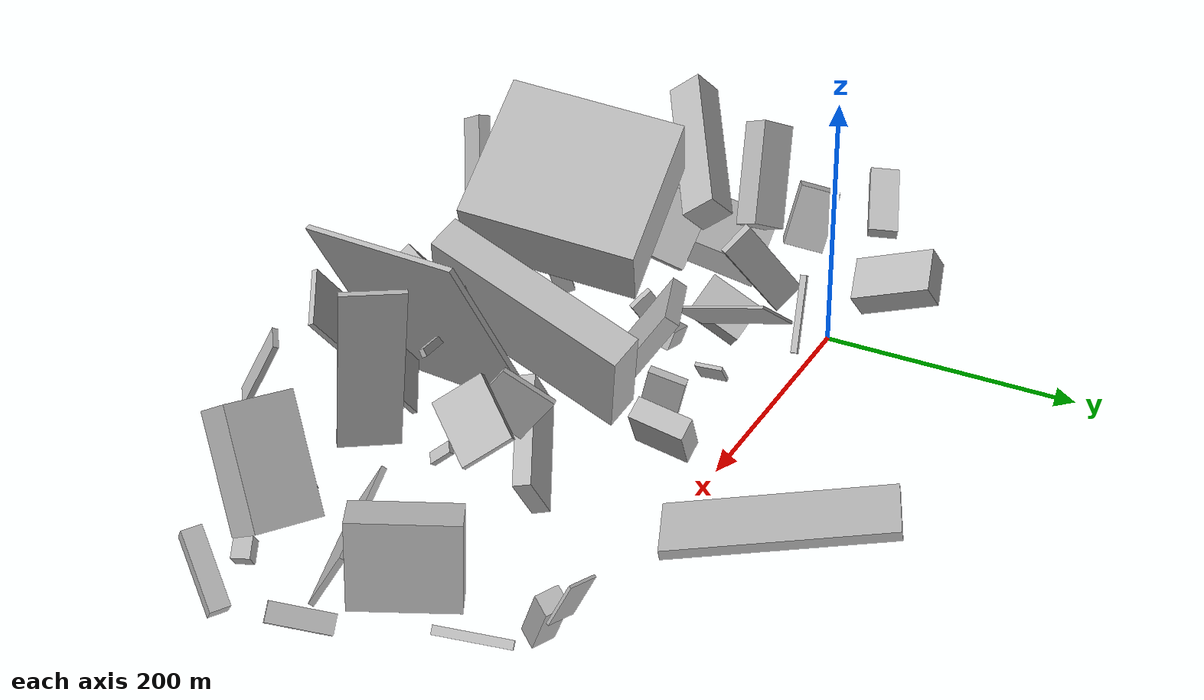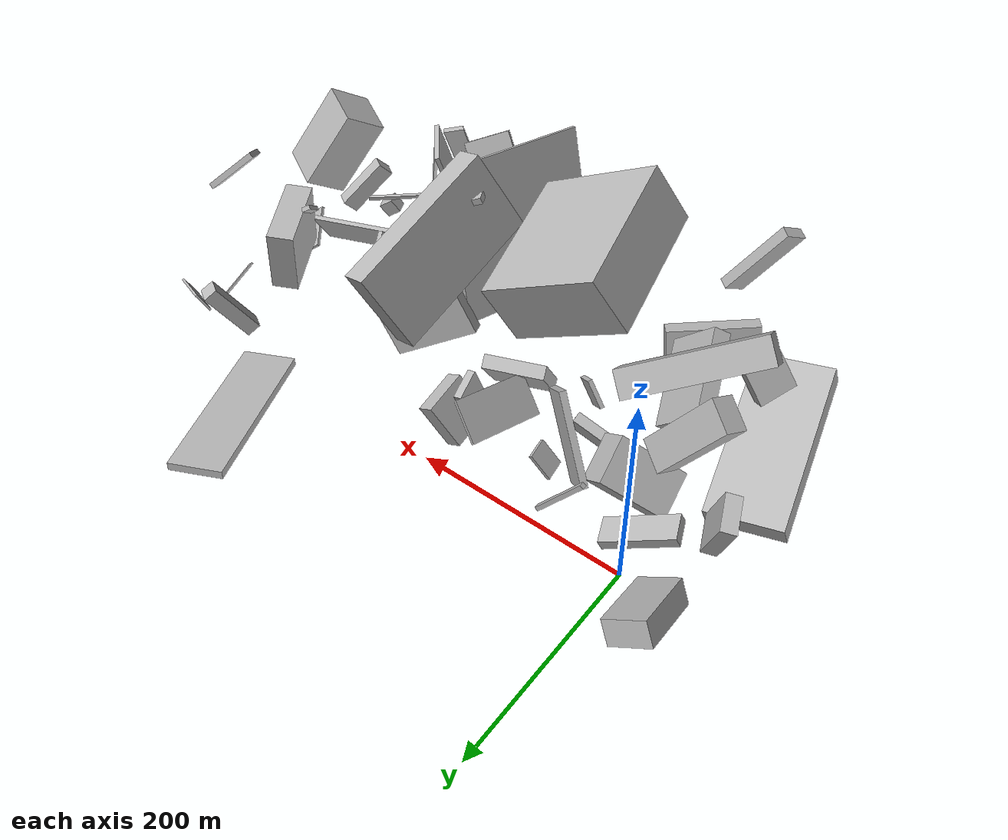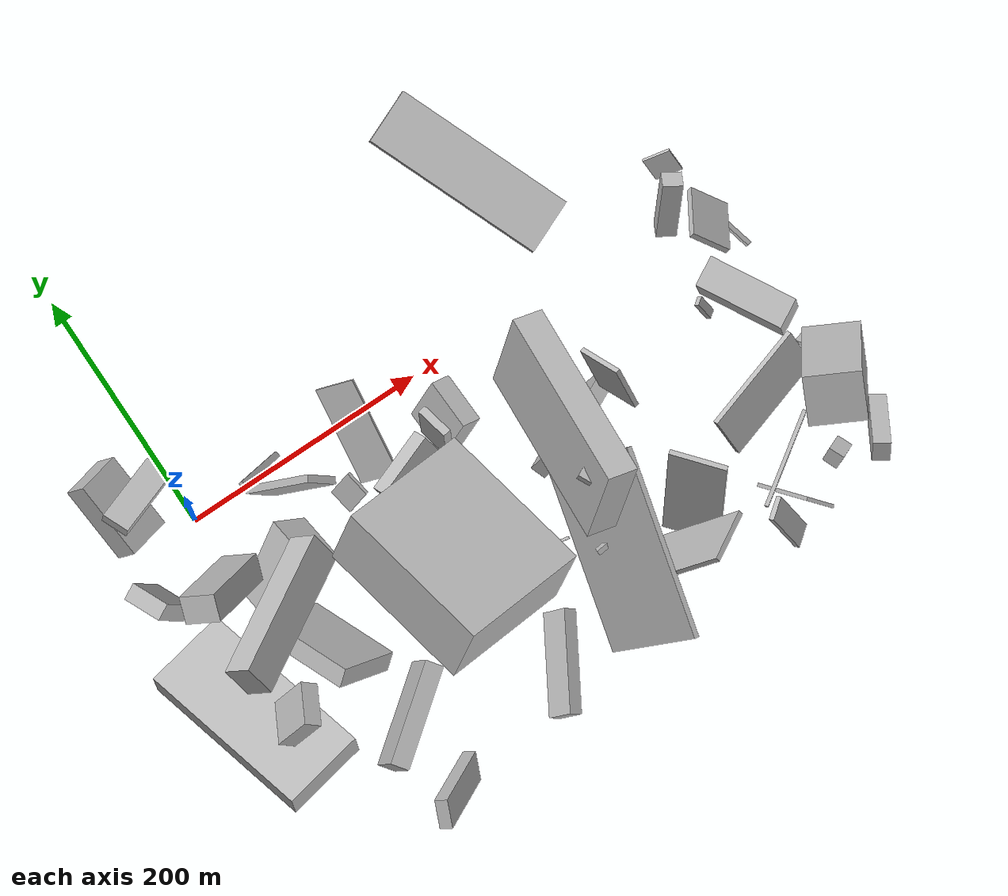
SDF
<sdf version="1.6">
 <world name="default">
  <model name="building_1">
   <static>0</static>
   <pose>-11.045200595864069 -145.80956800373724 43.34613428710082 1.4008416347814137 -0.3200566892249303 -1.3166306608947596</pose>
   <link name="link">
    <gravity>0</gravity>
    <pose>0 0 34.0 0 0 0</pose>
    <collision name="collision"><geometry><box><size>150 22 68</size></box></geometry></collision>
    <visual name="visual">
     <cast_shadows>0</cast_shadows>
     <geometry><box><size>150 22 68</size></box></geometry>
     <material>
      <script>
       <uri>model://HANNAS_wall/materials/scripts</uri>
       <uri>model://HANNAS_wall/materials/textures</uri>
       <name>vrc/HANNAS_wall</name>
      </script>
     </material>
    </visual>
   </link>
  </model>
  <model name="building_2">
   <static>0</static>
   <pose>272.29809115522625 -33.277205665071975 106.55713082389647 1.2243566731476407 0.35898661132525184 -0.19951446715817187</pose>
   <link name="link">
    <gravity>0</gravity>
    <pose>0 0 75.0 0 0 0</pose>
    <collision name="collision"><geometry><box><size>25 82 150</size></box></geometry></collision>
    <visual name="visual">
     <cast_shadows>0</cast_shadows>
     <geometry><box><size>25 82 150</size></box></geometry>
     <material>
      <script>
       <uri>model://HANNAS_wall/materials/scripts</uri>
       <uri>model://HANNAS_wall/materials/textures</uri>
       <name>vrc/HANNAS_wall</name>
      </script>
     </material>
    </visual>
   </link>
  </model>
  <model name="building_3">
   <static>0</static>
   <pose>24.270977680382675 -145.89870461045513 83.6426543328925 0.9636583664861774 0.44110781356315854 1.956272601875511</pose>
   <link name="link">
    <gravity>0</gravity>
    <pose>0 0 8.0 0 0 0</pose>
    <collision name="collision"><geometry><box><size>78 57 16</size></box></geometry></collision>
    <visual name="visual">
     <cast_shadows>0</cast_shadows>
     <geometry><box><size>78 57 16</size></box></geometry>
     <material>
      <script>
       <uri>model://HANNAS_wall/materials/scripts</uri>
       <uri>model://HANNAS_wall/materials/textures</uri>
       <name>vrc/HANNAS_wall</name>
      </script>
     </material>
    </visual>
   </link>
  </model>
  <model name="building_4">
   <static>0</static>
   <pose>85.07308114221789 -193.03313310754518 50.908356418196824 1.3398666094261784 -1.2902768321631246 -0.6861418881039083</pose>
   <link name="link">
    <gravity>0</gravity>
    <pose>0 0 41.5 0 0 0</pose>
    <collision name="collision"><geometry><box><size>38 15 83</size></box></geometry></collision>
    <visual name="visual">
     <cast_shadows>0</cast_shadows>
     <geometry><box><size>38 15 83</size></box></geometry>
     <material>
      <script>
       <uri>model://HANNAS_wall/materials/scripts</uri>
       <uri>model://HANNAS_wall/materials/textures</uri>
       <name>vrc/HANNAS_wall</name>
      </script>
     </material>
    </visual>
   </link>
  </model>
  <model name="building_6">
   <static>0</static>
   <pose>191.15110762252561 -138.38922431875503 135.2418830915341 0.30606377922608496 1.0211542230937134 -2.679041136572657</pose>
   <link name="link">
    <gravity>0</gravity>
    <pose>0 0 57.0 0 0 0</pose>
    <collision name="collision"><geometry><box><size>57 129 114</size></box></geometry></collision>
    <visual name="visual">
     <cast_shadows>0</cast_shadows>
     <geometry><box><size>57 129 114</size></box></geometry>
     <material>
      <script>
       <uri>model://HANNAS_wall/materials/scripts</uri>
       <uri>model://HANNAS_wall/materials/textures</uri>
       <name>vrc/HANNAS_wall</name>
      </script>
     </material>
    </visual>
   </link>
  </model>
  <model name="building_7">
   <static>0</static>
   <pose>277.12503952816314 -95.15454464167843 42.51184155360721 1.9562714539460777 -1.0164169945428834 0.02899578642273941</pose>
   <link name="link">
    <gravity>0</gravity>
    <pose>0 0 6.5 0 0 0</pose>
    <collision name="collision"><geometry><box><size>46 83 13</size></box></geometry></collision>
    <visual name="visual">
     <cast_shadows>0</cast_shadows>
     <geometry><box><size>46 83 13</size></box></geometry>
     <material>
      <script>
       <uri>model://HANNAS_wall/materials/scripts</uri>
       <uri>model://HANNAS_wall/materials/textures</uri>
       <name>vrc/HANNAS_wall</name>
      </script>
     </material>
    </visual>
   </link>
  </model>
  <model name="building_11">
   <static>0</static>
   <pose>423.6558930852022 -63.757351807112265 57.17596738541171 1.5135875283900666 -0.05839831383159211 0.5053169556935206</pose>
   <link name="link">
    <gravity>0</gravity>
    <pose>0 0 36.0 0 0 0</pose>
    <collision name="collision"><geometry><box><size>25 65 72</size></box></geometry></collision>
    <visual name="visual">
     <cast_shadows>0</cast_shadows>
     <geometry><box><size>25 65 72</size></box></geometry>
     <material>
      <script>
       <uri>model://HANNAS_wall/materials/scripts</uri>
       <uri>model://HANNAS_wall/materials/textures</uri>
       <name>vrc/HANNAS_wall</name>
      </script>
     </material>
    </visual>
   </link>
  </model>
  <model name="building_12">
   <static>0</static>
   <pose>-39.73497670326741 34.93261461343471 47.02919434048829 2.7559399604337713 -0.47151782771979583 -2.8742613254307336</pose>
   <link name="link">
    <gravity>0</gravity>
    <pose>0 0 11.5 0 0 0</pose>
    <collision name="collision"><geometry><box><size>38 65 23</size></box></geometry></collision>
    <visual name="visual">
     <cast_shadows>0</cast_shadows>
     <geometry><box><size>38 65 23</size></box></geometry>
     <material>
      <script>
       <uri>model://HANNAS_wall/materials/scripts</uri>
       <uri>model://HANNAS_wall/materials/textures</uri>
       <name>vrc/HANNAS_wall</name>
      </script>
     </material>
    </visual>
   </link>
  </model>
  <model name="building_13">
   <static>0</static>
   <pose>286.2997679808441 -227.7764116279069 90.35349725904598 2.37730187957983 -0.9530247926274734 -0.3758814164893328</pose>
   <link name="link">
    <gravity>0</gravity>
    <pose>0 0 2.0 0 0 0</pose>
    <collision name="collision"><geometry><box><size>128 45 4</size></box></geometry></collision>
    <visual name="visual">
     <cast_shadows>0</cast_shadows>
     <geometry><box><size>128 45 4</size></box></geometry>
     <material>
      <script>
       <uri>model://HANNAS_wall/materials/scripts</uri>
       <uri>model://HANNAS_wall/materials/textures</uri>
       <name>vrc/HANNAS_wall</name>
      </script>
     </material>
    </visual>
   </link>
  </model>
  <model name="building_15">
   <static>0</static>
   <pose>-50.964166451794576 -46.4415258120467 45.874084233989095 -0.22222071293219153 0.2640885294832761 1.9886913589471185</pose>
   <link name="link">
    <gravity>0</gravity>
    <pose>0 0 25.0 0 0 0</pose>
    <collision name="collision"><geometry><box><size>32 14 50</size></box></geometry></collision>
    <visual name="visual">
     <cast_shadows>0</cast_shadows>
     <geometry><box><size>32 14 50</size></box></geometry>
     <material>
      <script>
       <uri>model://HANNAS_wall/materials/scripts</uri>
       <uri>model://HANNAS_wall/materials/textures</uri>
       <name>vrc/HANNAS_wall</name>
      </script>
     </material>
    </visual>
   </link>
  </model>
  <model name="building_16">
   <static>0</static>
   <pose>318.53963018619675 -202.97088421332467 94.31957235217034 2.8532325551789017 -1.290919816420289 0.9702730116498103</pose>
   <link name="link">
    <gravity>0</gravity>
    <pose>0 0 2.0 0 0 0</pose>
    <collision name="collision"><geometry><box><size>150 45 4</size></box></geometry></collision>
    <visual name="visual">
     <cast_shadows>0</cast_shadows>
     <geometry><box><size>150 45 4</size></box></geometry>
     <material>
      <script>
       <uri>model://HANNAS_wall/materials/scripts</uri>
       <uri>model://HANNAS_wall/materials/textures</uri>
       <name>vrc/HANNAS_wall</name>
      </script>
     </material>
    </visual>
   </link>
  </model>
  <model name="building_17">
   <static>0</static>
   <pose>411.92592223468404 -159.44716192342497 32.39657267730771 1.0306175920441794 0.06719971115376178 0.30473875658401944</pose>
   <link name="link">
    <gravity>0</gravity>
    <pose>0 0 2.0 0 0 0</pose>
    <collision name="collision"><geometry><box><size>90 50 4</size></box></geometry></collision>
    <visual name="visual">
     <cast_shadows>0</cast_shadows>
     <geometry><box><size>90 50 4</size></box></geometry>
     <material>
      <script>
       <uri>model://HANNAS_wall/materials/scripts</uri>
       <uri>model://HANNAS_wall/materials/textures</uri>
       <name>vrc/HANNAS_wall</name>
      </script>
     </material>
    </visual>
   </link>
  </model>
  <model name="building_19">
   <static>0</static>
   <pose>60.62041133012649 -60.79780921943723 44.30384082946213 -2.3038313216763493 0.5100849579162611 1.6793877083462119</pose>
   <link name="link">
    <gravity>0</gravity>
    <pose>0 0 34.5 0 0 0</pose>
    <collision name="collision"><geometry><box><size>43 31 69</size></box></geometry></collision>
    <visual name="visual">
     <cast_shadows>0</cast_shadows>
     <geometry><box><size>43 31 69</size></box></geometry>
     <material>
      <script>
       <uri>model://HANNAS_wall/materials/scripts</uri>
       <uri>model://HANNAS_wall/materials/textures</uri>
       <name>vrc/HANNAS_wall</name>
      </script>
     </material>
    </visual>
   </link>
  </model>
  <model name="building_21">
   <static>0</static>
   <pose>96.51533415572766 -102.3629003450965 60.43474715952904 -2.787081403837969 0.9365123903523128 2.9838235303991225</pose>
   <link name="link">
    <gravity>0</gravity>
    <pose>0 0 9.5 0 0 0</pose>
    <collision name="collision"><geometry><box><size>27 4 19</size></box></geometry></collision>
    <visual name="visual">
     <cast_shadows>0</cast_shadows>
     <geometry><box><size>27 4 19</size></box></geometry>
     <material>
      <script>
       <uri>model://HANNAS_wall/materials/scripts</uri>
       <uri>model://HANNAS_wall/materials/textures</uri>
       <name>vrc/HANNAS_wall</name>
      </script>
     </material>
    </visual>
   </link>
  </model>
  <model name="building_24">
   <static>0</static>
   <pose>244.42949018658348 -260.41113273835964 24.46398338253534 3.122647231243604 -0.8790931944190024 2.255691962555037</pose>
   <link name="link">
    <gravity>0</gravity>
    <pose>0 0 2.5 0 0 0</pose>
    <collision name="collision"><geometry><box><size>5 22 5</size></box></geometry></collision>
    <visual name="visual">
     <cast_shadows>0</cast_shadows>
     <geometry><box><size>5 22 5</size></box></geometry>
     <material>
      <script>
       <uri>model://HANNAS_wall/materials/scripts</uri>
       <uri>model://HANNAS_wall/materials/textures</uri>
       <name>vrc/HANNAS_wall</name>
      </script>
     </material>
    </visual>
   </link>
  </model>
  <model name="building_31">
   <static>0</static>
   <pose>318.25647456374253 -91.61988068399495 98.69751009161996 -1.2844457671992784 -0.9227175504694749 1.5769890586227977</pose>
   <link name="link">
    <gravity>0</gravity>
    <pose>0 0 2.0 0 0 0</pose>
    <collision name="collision"><geometry><box><size>45 40 4</size></box></geometry></collision>
    <visual name="visual">
     <cast_shadows>0</cast_shadows>
     <geometry><box><size>45 40 4</size></box></geometry>
     <material>
      <script>
       <uri>model://HANNAS_wall/materials/scripts</uri>
       <uri>model://HANNAS_wall/materials/textures</uri>
       <name>vrc/HANNAS_wall</name>
      </script>
     </material>
    </visual>
   </link>
  </model>
  <model name="building_32">
   <static>0</static>
   <pose>345.45173167598557 31.68640046451732 58.343974627053655 1.4138374256517432 -0.05147784521799551 -2.733490764858431</pose>
   <link name="link">
    <gravity>0</gravity>
    <pose>0 0 75.0 0 0 0</pose>
    <collision name="collision"><geometry><box><size>46 7 150</size></box></geometry></collision>
    <visual name="visual">
     <cast_shadows>0</cast_shadows>
     <geometry><box><size>46 7 150</size></box></geometry>
     <material>
      <script>
       <uri>model://HANNAS_wall/materials/scripts</uri>
       <uri>model://HANNAS_wall/materials/textures</uri>
       <name>vrc/HANNAS_wall</name>
      </script>
     </material>
    </visual>
   </link>
  </model>
  <model name="building_33">
   <static>0</static>
   <pose>14.66395856238908 -118.27286048637755 136.27842093147208 0.5890801979348943 0.7725910212425964 2.5649201610999417</pose>
   <link name="link">
    <gravity>0</gravity>
    <pose>0 0 14.0 0 0 0</pose>
    <collision name="collision"><geometry><box><size>25 124 28</size></box></geometry></collision>
    <visual name="visual">
     <cast_shadows>0</cast_shadows>
     <geometry><box><size>25 124 28</size></box></geometry>
     <material>
      <script>
       <uri>model://HANNAS_wall/materials/scripts</uri>
       <uri>model://HANNAS_wall/materials/textures</uri>
       <name>vrc/HANNAS_wall</name>
      </script>
     </material>
    </visual>
   </link>
  </model>
  <model name="building_35">
   <static>0</static>
   <pose>273.6373318088146 -191.6898707836563 84.95698400486572 -1.7086098366141478 -0.4621357759353704 1.7324346537404864</pose>
   <link name="link">
    <gravity>0</gravity>
    <pose>0 0 18.5 0 0 0</pose>
    <collision name="collision"><geometry><box><size>4 6 37</size></box></geometry></collision>
    <visual name="visual">
     <cast_shadows>0</cast_shadows>
     <geometry><box><size>4 6 37</size></box></geometry>
     <material>
      <script>
       <uri>model://HANNAS_wall/materials/scripts</uri>
       <uri>model://HANNAS_wall/materials/textures</uri>
       <name>vrc/HANNAS_wall</name>
      </script>
     </material>
    </visual>
   </link>
  </model>
  <model name="building_40">
   <static>0</static>
   <pose>253.49244543448273 -205.93101187595585 96.98350121725863 0.3464182786544697 -1.1516986424675144 -0.5611463309182801</pose>
   <link name="link">
    <gravity>0</gravity>
    <pose>0 0 2.0 0 0 0</pose>
    <collision name="collision"><geometry><box><size>142 150 4</size></box></geometry></collision>
    <visual name="visual">
     <cast_shadows>0</cast_shadows>
     <geometry><box><size>142 150 4</size></box></geometry>
     <material>
      <script>
       <uri>model://HANNAS_wall/materials/scripts</uri>
       <uri>model://HANNAS_wall/materials/textures</uri>
       <name>vrc/HANNAS_wall</name>
      </script>
     </material>
    </visual>
   </link>
  </model>
  <model name="building_43">
   <static>0</static>
   <pose>61.96762923896699 -0.08684892671843825 55.63435775576537 2.228328581819191 0.12658210289691937 -1.4770132133294778</pose>
   <link name="link">
    <gravity>0</gravity>
    <pose>0 0 2.0 0 0 0</pose>
    <collision name="collision"><geometry><box><size>5 59 4</size></box></geometry></collision>
    <visual name="visual">
     <cast_shadows>0</cast_shadows>
     <geometry><box><size>5 59 4</size></box></geometry>
     <material>
      <script>
       <uri>model://HANNAS_wall/materials/scripts</uri>
       <uri>model://HANNAS_wall/materials/textures</uri>
       <name>vrc/HANNAS_wall</name>
      </script>
     </material>
    </visual>
   </link>
  </model>
  <model name="building_44">
   <static>0</static>
   <pose>433.3092915337666 -223.37815500618865 13.275940357942078 -1.5496264205497707 0.9229376709315654 -2.7215940344475156</pose>
   <link name="link">
    <gravity>0</gravity>
    <pose>0 0 6.5 0 0 0</pose>
    <collision name="collision"><geometry><box><size>15 16 13</size></box></geometry></collision>
    <visual name="visual">
     <cast_shadows>0</cast_shadows>
     <geometry><box><size>15 16 13</size></box></geometry>
     <material>
      <script>
       <uri>model://HANNAS_wall/materials/scripts</uri>
       <uri>model://HANNAS_wall/materials/textures</uri>
       <name>vrc/HANNAS_wall</name>
      </script>
     </material>
    </visual>
   </link>
  </model>
  <model name="building_47">
   <static>0</static>
   <pose>466.69174932372584 -61.12483274720324 34.64815028058212 -1.614835784158087 -0.7491507119126481 0.2637883343198004</pose>
   <link name="link">
    <gravity>0</gravity>
    <pose>0 0 26.0 0 0 0</pose>
    <collision name="collision"><geometry><box><size>2 6 52</size></box></geometry></collision>
    <visual name="visual">
     <cast_shadows>0</cast_shadows>
     <geometry><box><size>2 6 52</size></box></geometry>
     <material>
      <script>
       <uri>model://HANNAS_wall/materials/scripts</uri>
       <uri>model://HANNAS_wall/materials/textures</uri>
       <name>vrc/HANNAS_wall</name>
      </script>
     </material>
    </visual>
   </link>
  </model>
  <model name="building_49">
   <static>0</static>
   <pose>51.93931337774674 -14.334672096940702 61.19931237438142 -0.035221645696492714 0.6404772475835513 -0.5881161580547449</pose>
   <link name="link">
    <gravity>0</gravity>
    <pose>0 0 40.0 0 0 0</pose>
    <collision name="collision"><geometry><box><size>26 6 80</size></box></geometry></collision>
    <visual name="visual">
     <cast_shadows>0</cast_shadows>
     <geometry><box><size>26 6 80</size></box></geometry>
     <material>
      <script>
       <uri>model://HANNAS_wall/materials/scripts</uri>
       <uri>model://HANNAS_wall/materials/textures</uri>
       <name>vrc/HANNAS_wall</name>
      </script>
     </material>
    </visual>
   </link>
  </model>
  <model name="building_52">
   <static>0</static>
   <pose>359.1532548075908 -262.71939370961655 108.30290354546106 1.945444093674381 -1.0751995049579142 1.903740094045678</pose>
   <link name="link">
    <gravity>0</gravity>
    <pose>0 0 9.5 0 0 0</pose>
    <collision name="collision"><geometry><box><size>57 4 19</size></box></geometry></collision>
    <visual name="visual">
     <cast_shadows>0</cast_shadows>
     <geometry><box><size>57 4 19</size></box></geometry>
     <material>
      <script>
       <uri>model://HANNAS_wall/materials/scripts</uri>
       <uri>model://HANNAS_wall/materials/textures</uri>
       <name>vrc/HANNAS_wall</name>
      </script>
     </material>
    </visual>
   </link>
  </model>
  <model name="building_53">
   <static>0</static>
   <pose>-25.505132956817544 -187.54581953765052 106.34934724379364 -2.1388913041078603 -0.950825353144838 -0.004470346317433099</pose>
   <link name="link">
    <gravity>0</gravity>
    <pose>0 0 17.0 0 0 0</pose>
    <collision name="collision"><geometry><box><size>42 14 34</size></box></geometry></collision>
    <visual name="visual">
     <cast_shadows>0</cast_shadows>
     <geometry><box><size>42 14 34</size></box></geometry>
     <material>
      <script>
       <uri>model://HANNAS_wall/materials/scripts</uri>
       <uri>model://HANNAS_wall/materials/textures</uri>
       <name>vrc/HANNAS_wall</name>
      </script>
     </material>
    </visual>
   </link>
  </model>
  <model name="building_54">
   <static>0</static>
   <pose>110.84776486709032 -59.260594512584696 17.078808819600944 1.592631615596143 -0.7047243970582017 -2.999404394177278</pose>
   <link name="link">
    <gravity>0</gravity>
    <pose>0 0 10.5 0 0 0</pose>
    <collision name="collision"><geometry><box><size>3 27 21</size></box></geometry></collision>
    <visual name="visual">
     <cast_shadows>0</cast_shadows>
     <geometry><box><size>3 27 21</size></box></geometry>
     <material>
      <script>
       <uri>model://HANNAS_wall/materials/scripts</uri>
       <uri>model://HANNAS_wall/materials/textures</uri>
       <name>vrc/HANNAS_wall</name>
      </script>
     </material>
    </visual>
   </link>
  </model>
  <model name="building_55">
   <static>0</static>
   <pose>438.96331953186564 -6.363927205392702 40.192864554032184 1.372843023743068 1.00521719505433 -2.2815234490036587</pose>
   <link name="link">
    <gravity>0</gravity>
    <pose>0 0 8.0 0 0 0</pose>
    <collision name="collision"><geometry><box><size>60 14 16</size></box></geometry></collision>
    <visual name="visual">
     <cast_shadows>0</cast_shadows>
     <geometry><box><size>60 14 16</size></box></geometry>
     <material>
      <script>
       <uri>model://HANNAS_wall/materials/scripts</uri>
       <uri>model://HANNAS_wall/materials/textures</uri>
       <name>vrc/HANNAS_wall</name>
      </script>
     </material>
    </visual>
   </link>
  </model>
  <model name="building_57">
   <static>0</static>
   <pose>444.25932994308346 15.788564076701654 56.12264470567172 0.24016672943483403 -0.38199097401388754 -1.8920400301642994</pose>
   <link name="link">
    <gravity>0</gravity>
    <pose>0 0 17.0 0 0 0</pose>
    <collision name="collision"><geometry><box><size>2 22 34</size></box></geometry></collision>
    <visual name="visual">
     <cast_shadows>0</cast_shadows>
     <geometry><box><size>2 22 34</size></box></geometry>
     <material>
      <script>
       <uri>model://HANNAS_wall/materials/scripts</uri>
       <uri>model://HANNAS_wall/materials/textures</uri>
       <name>vrc/HANNAS_wall</name>
      </script>
     </material>
    </visual>
   </link>
  </model>
  <model name="building_58">
   <static>0</static>
   <pose>435.122983133927 -41.275195947506916 173.0877409380715 0.6410283278266874 0.5415767759063408 1.0088445842778457</pose>
   <link name="link">
    <gravity>0</gravity>
    <pose>0 0 2.5 0 0 0</pose>
    <collision name="collision"><geometry><box><size>44 34 5</size></box></geometry></collision>
    <visual name="visual">
     <cast_shadows>0</cast_shadows>
     <geometry><box><size>44 34 5</size></box></geometry>
     <material>
      <script>
       <uri>model://HANNAS_wall/materials/scripts</uri>
       <uri>model://HANNAS_wall/materials/textures</uri>
       <name>vrc/HANNAS_wall</name>
      </script>
     </material>
    </visual>
   </link>
  </model>
  <model name="building_60">
   <static>0</static>
   <pose>123.75228076107236 -14.395031358485639 77.8470411900052 -0.46025002558925454 -0.7742844832840747 -2.9296815198276738</pose>
   <link name="link">
    <gravity>0</gravity>
    <pose>0 0 18.5 0 0 0</pose>
    <collision name="collision"><geometry><box><size>2 80 37</size></box></geometry></collision>
    <visual name="visual">
     <cast_shadows>0</cast_shadows>
     <geometry><box><size>2 80 37</size></box></geometry>
     <material>
      <script>
       <uri>model://HANNAS_wall/materials/scripts</uri>
       <uri>model://HANNAS_wall/materials/textures</uri>
       <name>vrc/HANNAS_wall</name>
      </script>
     </material>
    </visual>
   </link>
  </model>
  <model name="building_62">
   <static>0</static>
   <pose>363.67748913569886 -236.0862757212868 58.109935288229295 -1.67439737994867 -0.12545984023782408 -0.9581712103846669</pose>
   <link name="link">
    <gravity>0</gravity>
    <pose>0 0 40.0 0 0 0</pose>
    <collision name="collision"><geometry><box><size>3 4 80</size></box></geometry></collision>
    <visual name="visual">
     <cast_shadows>0</cast_shadows>
     <geometry><box><size>3 4 80</size></box></geometry>
     <material>
      <script>
       <uri>model://HANNAS_wall/materials/scripts</uri>
       <uri>model://HANNAS_wall/materials/textures</uri>
       <name>vrc/HANNAS_wall</name>
      </script>
     </material>
    </visual>
   </link>
  </model>
  <model name="building_67">
   <static>0</static>
   <pose>394.2616348098536 -248.87362847866532 48.90987304975538 0.21063242116961894 -1.0743431288409313 -1.0554850575278572</pose>
   <link name="link">
    <gravity>0</gravity>
    <pose>0 0 12.0 0 0 0</pose>
    <collision name="collision"><geometry><box><size>80 3 24</size></box></geometry></collision>
    <visual name="visual">
     <cast_shadows>0</cast_shadows>
     <geometry><box><size>80 3 24</size></box></geometry>
     <material>
      <script>
       <uri>model://HANNAS_wall/materials/scripts</uri>
       <uri>model://HANNAS_wall/materials/textures</uri>
       <name>vrc/HANNAS_wall</name>
      </script>
     </material>
    </visual>
   </link>
  </model>
  <model name="building_71">
   <static>0</static>
   <pose>69.45578090804834 -276.28633069898007 73.3104333404388 0.5083401472729528 -0.31687690403130053 -0.5687522780151864</pose>
   <link name="link">
    <gravity>0</gravity>
    <pose>0 0 40.0 0 0 0</pose>
    <collision name="collision"><geometry><box><size>10 24 80</size></box></geometry></collision>
    <visual name="visual">
     <cast_shadows>0</cast_shadows>
     <geometry><box><size>10 24 80</size></box></geometry>
     <material>
      <script>
       <uri>model://HANNAS_wall/materials/scripts</uri>
       <uri>model://HANNAS_wall/materials/textures</uri>
       <name>vrc/HANNAS_wall</name>
      </script>
     </material>
    </visual>
   </link>
  </model>
  <model name="building_72">
   <static>0</static>
   <pose>153.47283305699867 -165.56606967306126 63.59301920029036 2.6718043673022027 0.6254384863531505 -1.9998491697996978</pose>
   <link name="link">
    <gravity>0</gravity>
    <pose>0 0 1.0 0 0 0</pose>
    <collision name="collision"><geometry><box><size>80 4 2</size></box></geometry></collision>
    <visual name="visual">
     <cast_shadows>0</cast_shadows>
     <geometry><box><size>80 4 2</size></box></geometry>
     <material>
      <script>
       <uri>model://HANNAS_wall/materials/scripts</uri>
       <uri>model://HANNAS_wall/materials/textures</uri>
       <name>vrc/HANNAS_wall</name>
      </script>
     </material>
    </visual>
   </link>
  </model>
  <model name="building_73">
   <static>0</static>
   <pose>437.86350434258054 -173.41956539221735 108.9345062198324 -1.3692394045624643 -0.9706614126359816 -2.228340866809001</pose>
   <link name="link">
    <gravity>0</gravity>
    <pose>0 0 22.5 0 0 0</pose>
    <collision name="collision"><geometry><box><size>80 42 45</size></box></geometry></collision>
    <visual name="visual">
     <cast_shadows>0</cast_shadows>
     <geometry><box><size>80 42 45</size></box></geometry>
     <material>
      <script>
       <uri>model://HANNAS_wall/materials/scripts</uri>
       <uri>model://HANNAS_wall/materials/textures</uri>
       <name>vrc/HANNAS_wall</name>
      </script>
     </material>
    </visual>
   </link>
  </model>
  <model name="building_77">
   <static>0</static>
   <pose>-24.23368355839152 18.19036549034874 114.1990295912102 -1.6430211234182062 0.40993750872798973 0.37383258151188087</pose>
   <link name="link">
    <gravity>0</gravity>
    <pose>0 0 11.0 0 0 0</pose>
    <collision name="collision"><geometry><box><size>60 9 22</size></box></geometry></collision>
    <visual name="visual">
     <cast_shadows>0</cast_shadows>
     <geometry><box><size>60 9 22</size></box></geometry>
     <material>
      <script>
       <uri>model://HANNAS_wall/materials/scripts</uri>
       <uri>model://HANNAS_wall/materials/textures</uri>
       <name>vrc/HANNAS_wall</name>
      </script>
     </material>
    </visual>
   </link>
  </model>
  <model name="building_80">
   <static>0</static>
   <pose>468.36178951612663 -157.69557447752936 16.225914761694085 2.641678767370914 -0.7591956426339213 0.9538673107766573</pose>
   <link name="link">
    <gravity>0</gravity>
    <pose>0 0 7.0 0 0 0</pose>
    <collision name="collision"><geometry><box><size>3 44 14</size></box></geometry></collision>
    <visual name="visual">
     <cast_shadows>0</cast_shadows>
     <geometry><box><size>3 44 14</size></box></geometry>
     <material>
      <script>
       <uri>model://HANNAS_wall/materials/scripts</uri>
       <uri>model://HANNAS_wall/materials/textures</uri>
       <name>vrc/HANNAS_wall</name>
      </script>
     </material>
    </visual>
   </link>
  </model>
  <model name="building_81">
   <static>0</static>
   <pose>254.79995748100146 -154.01064606657133 163.0052160292394 -2.9524243242644217 -1.1896434497046025 0.2878922175324274</pose>
   <link name="link">
    <gravity>0</gravity>
    <pose>0 0 14.0 0 0 0</pose>
    <collision name="collision"><geometry><box><size>6 19 28</size></box></geometry></collision>
    <visual name="visual">
     <cast_shadows>0</cast_shadows>
     <geometry><box><size>6 19 28</size></box></geometry>
     <material>
      <script>
       <uri>model://HANNAS_wall/materials/scripts</uri>
       <uri>model://HANNAS_wall/materials/textures</uri>
       <name>vrc/HANNAS_wall</name>
      </script>
     </material>
    </visual>
   </link>
  </model>
  <model name="building_83">
   <static>0</static>
   <pose>190.7106803148166 -43.15461937701237 62.34303200242653 2.883613260402262 0.17263683847742914 0.15720506269105686</pose>
   <link name="link">
    <gravity>0</gravity>
    <pose>0 0 19.5 0 0 0</pose>
    <collision name="collision"><geometry><box><size>7 28 39</size></box></geometry></collision>
    <visual name="visual">
     <cast_shadows>0</cast_shadows>
     <geometry><box><size>7 28 39</size></box></geometry>
     <material>
      <script>
       <uri>model://HANNAS_wall/materials/scripts</uri>
       <uri>model://HANNAS_wall/materials/textures</uri>
       <name>vrc/HANNAS_wall</name>
      </script>
     </material>
    </visual>
   </link>
  </model>
  <model name="building_85">
   <static>0</static>
   <pose>161.72029325463112 -246.5742868339058 60.92334139594192 0.6431999324885419 0.06868833458074482 1.0365760568406037</pose>
   <link name="link">
    <gravity>0</gravity>
    <pose>0 0 13.0 0 0 0</pose>
    <collision name="collision"><geometry><box><size>80 11 26</size></box></geometry></collision>
    <visual name="visual">
     <cast_shadows>0</cast_shadows>
     <geometry><box><size>80 11 26</size></box></geometry>
     <material>
      <script>
       <uri>model://HANNAS_wall/materials/scripts</uri>
       <uri>model://HANNAS_wall/materials/textures</uri>
       <name>vrc/HANNAS_wall</name>
      </script>
     </material>
    </visual>
   </link>
  </model>
  <model name="building_86">
   <static>0</static>
   <pose>202.38786620007218 -62.01165891386694 27.386320949920815 1.7833485760954928 -0.564423714581622 3.0551316289165444</pose>
   <link name="link">
    <gravity>0</gravity>
    <pose>0 0 21.0 0 0 0</pose>
    <collision name="collision"><geometry><box><size>17 45 42</size></box></geometry></collision>
    <visual name="visual">
     <cast_shadows>0</cast_shadows>
     <geometry><box><size>17 45 42</size></box></geometry>
     <material>
      <script>
       <uri>model://HANNAS_wall/materials/scripts</uri>
       <uri>model://HANNAS_wall/materials/textures</uri>
       <name>vrc/HANNAS_wall</name>
      </script>
     </material>
    </visual>
   </link>
  </model>
  <model name="building_87">
   <static>0</static>
   <pose>160.55227616147573 -90.00094262166024 47.74184557753648 -0.5999959401280552 0.023569013722332256 0.36005951933278413</pose>
   <link name="link">
    <gravity>0</gravity>
    <pose>0 0 30.0 0 0 0</pose>
    <collision name="collision"><geometry><box><size>53 12 60</size></box></geometry></collision>
    <visual name="visual">
     <cast_shadows>0</cast_shadows>
     <geometry><box><size>53 12 60</size></box></geometry>
     <material>
      <script>
       <uri>model://HANNAS_wall/materials/scripts</uri>
       <uri>model://HANNAS_wall/materials/textures</uri>
       <name>vrc/HANNAS_wall</name>
      </script>
     </material>
    </visual>
   </link>
  </model>
  <model name="building_89">
   <static>0</static>
   <pose>475.7002996146542 -226.6332771228283 27.438775981947703 3.1055600987154617 -0.740541822954473 -2.130103984133507</pose>
   <link name="link">
    <gravity>0</gravity>
    <pose>0 0 9.0 0 0 0</pose>
    <collision name="collision"><geometry><box><size>56 14 18</size></box></geometry></collision>
    <visual name="visual">
     <cast_shadows>0</cast_shadows>
     <geometry><box><size>56 14 18</size></box></geometry>
     <material>
      <script>
       <uri>model://HANNAS_wall/materials/scripts</uri>
       <uri>model://HANNAS_wall/materials/textures</uri>
       <name>vrc/HANNAS_wall</name>
      </script>
     </material>
    </visual>
   </link>
  </model>
  <model name="building_90">
   <static>0</static>
   <pose>92.78718525133333 -85.56686131164538 27.09908882351818 0.9619260474619584 1.1264731953086697 -0.5298804710530529</pose>
   <link name="link">
    <gravity>0</gravity>
    <pose>0 0 5.0 0 0 0</pose>
    <collision name="collision"><geometry><box><size>15 32 10</size></box></geometry></collision>
    <visual name="visual">
     <cast_shadows>0</cast_shadows>
     <geometry><box><size>15 32 10</size></box></geometry>
     <material>
      <script>
       <uri>model://HANNAS_wall/materials/scripts</uri>
       <uri>model://HANNAS_wall/materials/textures</uri>
       <name>vrc/HANNAS_wall</name>
      </script>
     </material>
    </visual>
   </link>
  </model>
  <model name="building_91">
   <static>0</static>
   <pose>-25.290372092398286 -58.108204635454065 115.54050005409277 -0.7390431737791449 -0.9538916255031878 -2.8437505668958756</pose>
   <link name="link">
    <gravity>0</gravity>
    <pose>0 0 14.5 0 0 0</pose>
    <collision name="collision"><geometry><box><size>80 22 29</size></box></geometry></collision>
    <visual name="visual">
     <cast_shadows>0</cast_shadows>
     <geometry><box><size>80 22 29</size></box></geometry>
     <material>
      <script>
       <uri>model://HANNAS_wall/materials/scripts</uri>
       <uri>model://HANNAS_wall/materials/textures</uri>
       <name>vrc/HANNAS_wall</name>
      </script>
     </material>
    </visual>
   </link>
  </model>
  <model name="building_93">
   <static>0</static>
   <pose>221.59500613465937 -169.702538864195 14.26892556364657 -1.6731882560237155 -0.18072029463501668 -0.209524731097008</pose>
   <link name="link">
    <gravity>0</gravity>
    <pose>0 0 1.0 0 0 0</pose>
    <collision name="collision"><geometry><box><size>15 2 2</size></box></geometry></collision>
    <visual name="visual">
     <cast_shadows>0</cast_shadows>
     <geometry><box><size>15 2 2</size></box></geometry>
     <material>
      <script>
       <uri>model://HANNAS_wall/materials/scripts</uri>
       <uri>model://HANNAS_wall/materials/textures</uri>
       <name>vrc/HANNAS_wall</name>
      </script>
     </material>
    </visual>
   </link>
  </model>
  <model name="building_96">
   <static>0</static>
   <pose>406.2816273612942 -86.7057686384889 113.95207172324952 -0.9854545403476398 0.6802205651741282 2.6164205193352617</pose>
   <link name="link">
    <gravity>0</gravity>
    <pose>0 0 4.0 0 0 0</pose>
    <collision name="collision"><geometry><box><size>4 17 8</size></box></geometry></collision>
    <visual name="visual">
     <cast_shadows>0</cast_shadows>
     <geometry><box><size>4 17 8</size></box></geometry>
     <material>
      <script>
       <uri>model://HANNAS_wall/materials/scripts</uri>
       <uri>model://HANNAS_wall/materials/textures</uri>
       <name>vrc/HANNAS_wall</name>
      </script>
     </material>
    </visual>
   </link>
  </model>
 </world>
</sdf>
